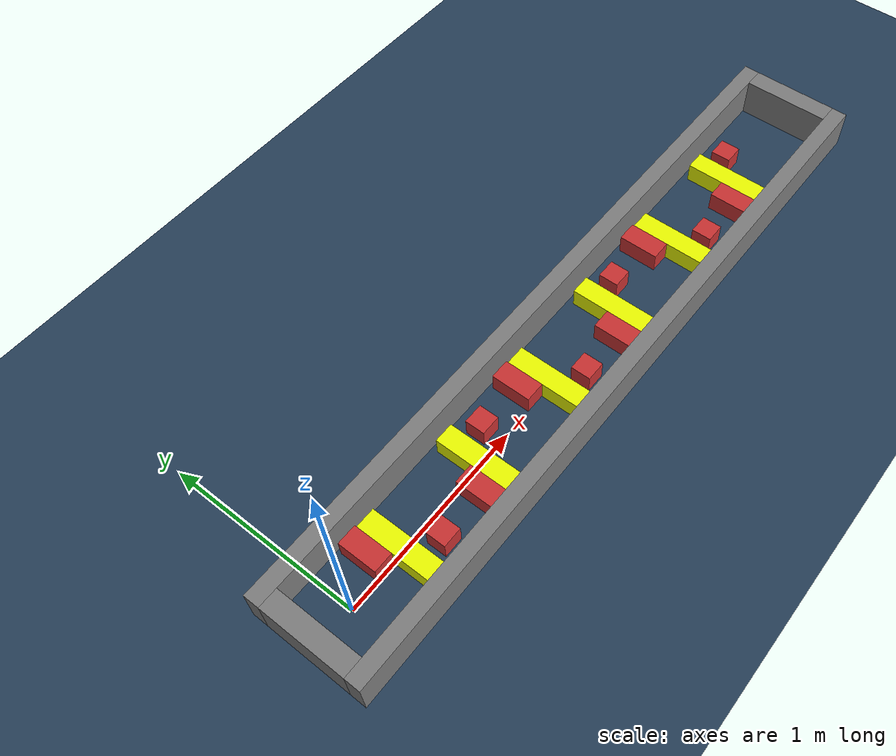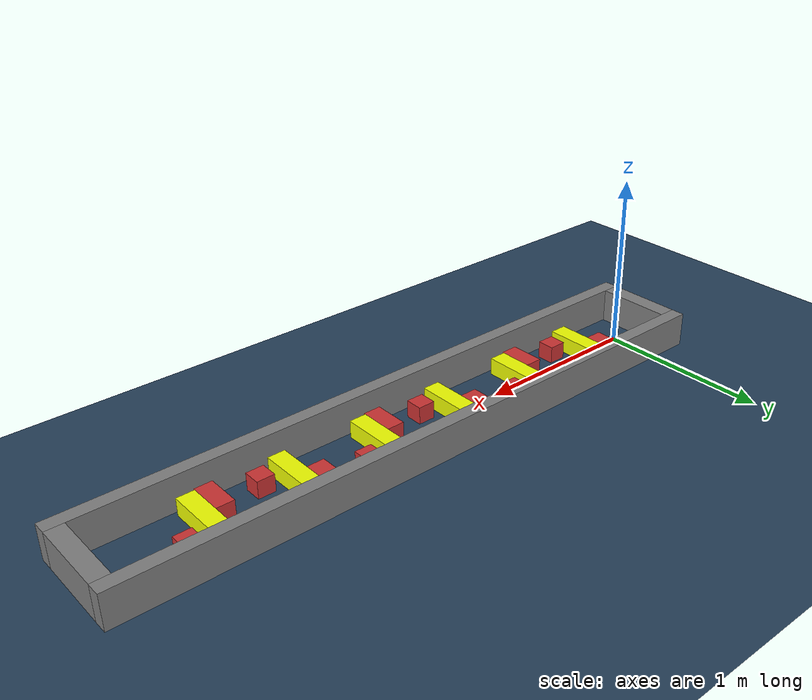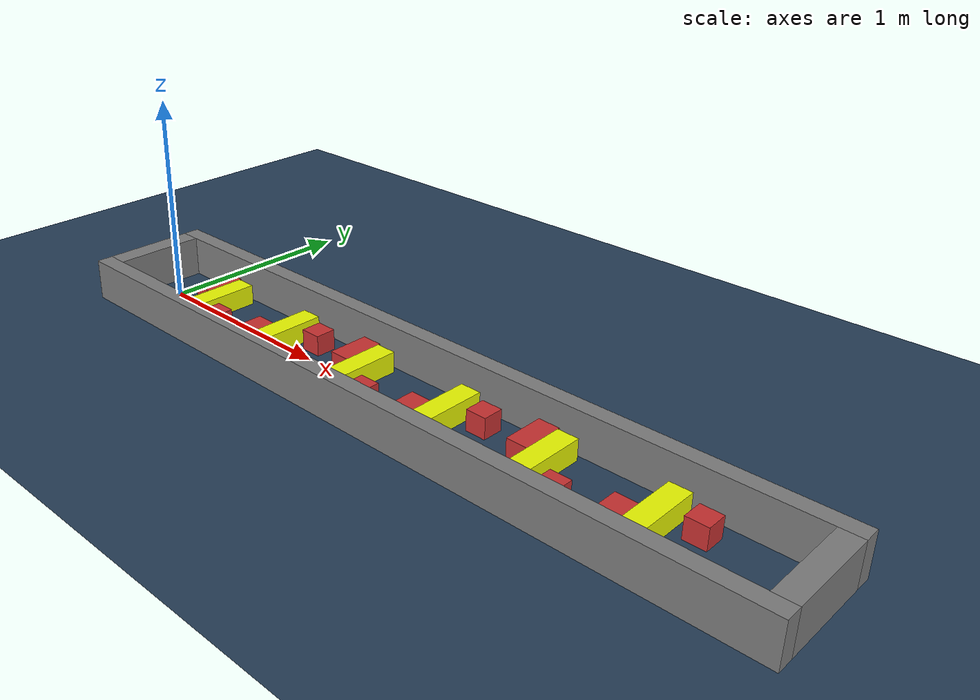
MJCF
<mujoco>
  <option timestep="0.01" integrator="RK4" />
  <worldbody>
    <light pos="0 0 1.5" dir="0 0 -1" directional="true" />
    <geom name="floor" size="0 0 0.05" type="plane" material="groundplane" friction=".5 0.005 0.001"
      priority="2" condim="4" />
  </worldbody>

  <worldbody>

    <body name="ball" pos=".0 0 .05">
      <geom name="gball_0" type="sphere" size="0.02" mass="5." material="BallMat"
        friction=".5 0.005 0.001 " condim="4" />
      <site name="sensor_ball" />
      <joint name="joint_x" type="slide" pos="0 0 0" axis="1 0 0" />
      <joint name="joint_y" type="slide" pos="0 0 0" axis="0 1 0" />
    </body>

    <body name="wall_1" pos="0.2 0.1 .05">
      <geom name="wall_1" type="box" size="0.05 0.1 0.05" mass=".1" material="static" condim="4" />
    </body>

    <body name="wall_2" pos="0.45 -0.1 .05">
      <geom name="wall_2" type="box" size="0.05 0.05 0.05" mass=".1" material="static" condim="4" />
    </body>

    <body name="movable_cube1" pos="0.3 0 .05" euler="0 0 0">
      <freejoint />
      <geom name="movable_cube1" type="box" size="0.05 0.19 0.05" mass=".1" material="movable"
        condim="4" />
    </body>

    <body name="wall_3" pos="0.7 -0.1 .05">
      <geom name="wall_3" type="box" size="0.05 0.1 0.05" mass=".1" material="static" condim="4" />
    </body>

    <body name="wall_4" pos="0.95 0.1 .05">
      <geom name="wall_4" type="box" size="0.05 0.05 0.05" mass=".1" material="static" condim="4" />
    </body>

    <body name="movable_cube2" pos="0.8 0 .05" euler="0 0 0">
      <freejoint />
      <geom name="movable_cube2" type="box" size="0.05 0.19 0.05" mass=".1" material="movable"
        condim="4" />
    </body>

    <body name="wall_5" pos="1.2 0.1 .05">
      <geom name="wall_5" type="box" size="0.05 0.1 0.05" mass=".1" material="static" condim="4" />
    </body>

    <body name="wall_6" pos="1.45 -0.1 .05">
      <geom name="wall_6" type="box" size="0.05 0.05 0.05" mass=".1" material="static" condim="4" />
    </body>

    <body name="movable_cube3" pos="1.3 0 .05" euler="0 0 0">
      <freejoint />
      <geom name="movable_cube3" type="box" size="0.05 0.19 0.05" mass=".1" material="movable"
        condim="4" />
    </body>

    <body name="wall_7" pos="1.7 -0.1 .05">
      <geom name="wall_7" type="box" size="0.05 0.1 0.05" mass=".1" material="static" condim="4" />
    </body>

    <body name="wall_8" pos="1.95 0.1 .05">
      <geom name="wall_8" type="box" size="0.05 0.05 0.05" mass=".1" material="static" condim="4" />
    </body>

    <body name="movable_cube4" pos="1.8 0 .05" euler="0 0 0">
      <freejoint />
      <geom name="movable_cube4" type="box" size="0.05 0.19 0.05" mass=".1" material="movable"
        condim="4" />
    </body>

    <body name="wall_9" pos="2.2 0.1 .05">
      <geom name="wall_9" type="box" size="0.05 0.1 0.05" mass=".1" material="static" condim="4" />
    </body>

    <body name="wall_10" pos="2.45 -0.1 .05">
      <geom name="wall_10" type="box" size="0.05 0.05 0.05" mass=".1" material="static" condim="4" />
    </body>

    <body name="movable_cube5" pos="2.3 0 .05" euler="0 0 0">
      <freejoint />
      <geom name="movable_cube5" type="box" size="0.05 0.19 0.05" mass=".1" material="movable"
        condim="4" />
    </body>

    <body name="wall_11" pos="2.7 -0.1 .05">
      <geom name="wall_11" type="box" size="0.05 0.1 0.05" mass=".1" material="static" condim="4" />
    </body>

    <body name="wall_12" pos="2.95 0.1 .05">
      <geom name="wall_12" type="box" size="0.05 0.05 0.05" mass=".1" material="static" condim="4" />
    </body>

    <body name="movable_cube6" pos="2.8 0 .05" euler="0 0 0">
      <freejoint />
      <geom name="movable_cube6" type="box" size="0.05 0.19 0.05" mass=".1" material="movable"
        condim="4" />
    </body>

    <body name="case" pos="0 0 0.1">
      <geom name="gcase_a" type="box" size="0.05 0.22 0.1" pos="-.2 0 0" />
      <geom name="gcase_b" type="box" size="0.05 0.22 0.1" pos="3.4 0 0" />
      <geom name="gcase_c" type="box" size="1.85 0.04 0.1" pos="1.6 .26 0" />
      <geom name="gcase_d" type="box" size="1.85 0.04 0.1" pos="1.6 -.26 0" />
    </body>

  </worldbody>

  <actuator>
    <motor name="actuator_x" joint="joint_x" gear="1" />
    <motor name="actuator_y" joint="joint_y" gear="1" />
  </actuator>

  <asset>
    <!-- Materials for visualization -->
    <material name="MatPlane" rgba="0.8 0.9 0.8 1" />
    <material name="movable" rgba="0.94 1.0 0.0 1" />
    <material name="static" rgba="0.8 0.2 0.2 1" />
    <material name="BallMat" rgba="0.2 0.2 0.8 1" />

    <texture type="skybox" builtin="gradient" rgb1="0.3 0.5 0.7" rgb2="0 0 0" width="512"
      height="3072" />
    <texture type="2d" name="groundplane" builtin="checker" mark="edge" rgb1="0.2 0.3 0.4"
      rgb2="0.1 0.2 0.3"
      markrgb="0.8 0.8 0.8" width="300" height="300" />
    <material name="groundplane" texture="groundplane" texuniform="true" texrepeat="5 5"
      reflectance="0.2" />
  </asset>

  <visual>
    <headlight diffuse="0.6 0.6 0.6" ambient="0.3 0.3 0.3" specular="0 0 0" />
    <rgba haze="0.15 0.25 0.35 1" />
    <global azimuth="60" elevation="-20" />
  </visual>

  <sensor>
    <velocimeter name="sensor_ball" site="sensor_ball" />
  </sensor>

</mujoco>
